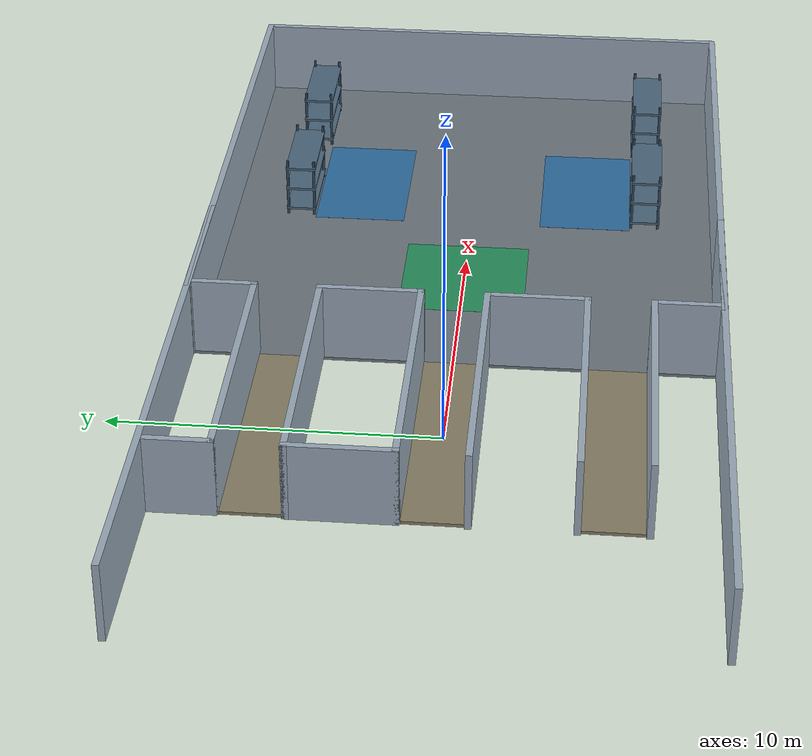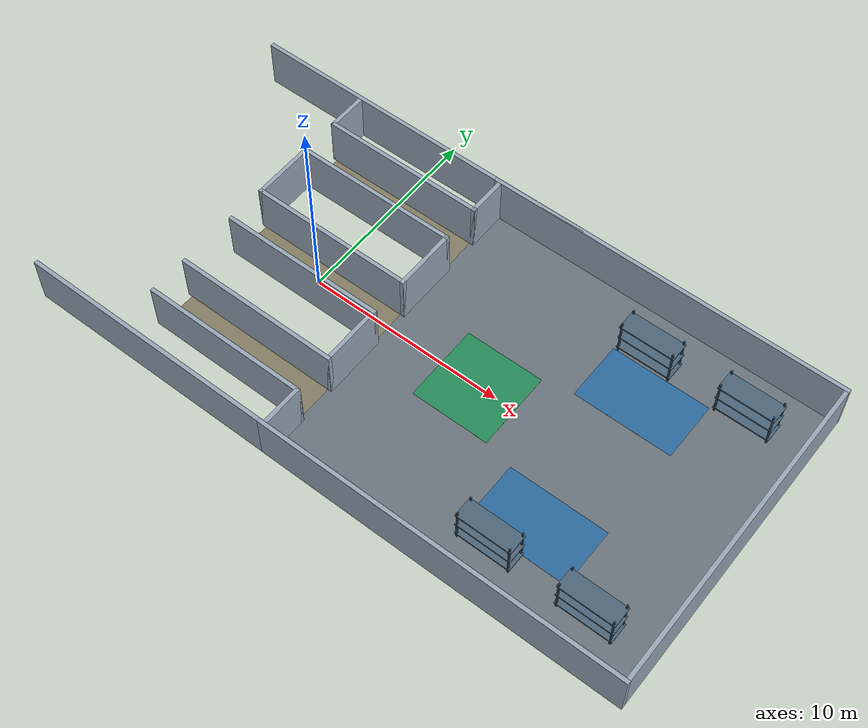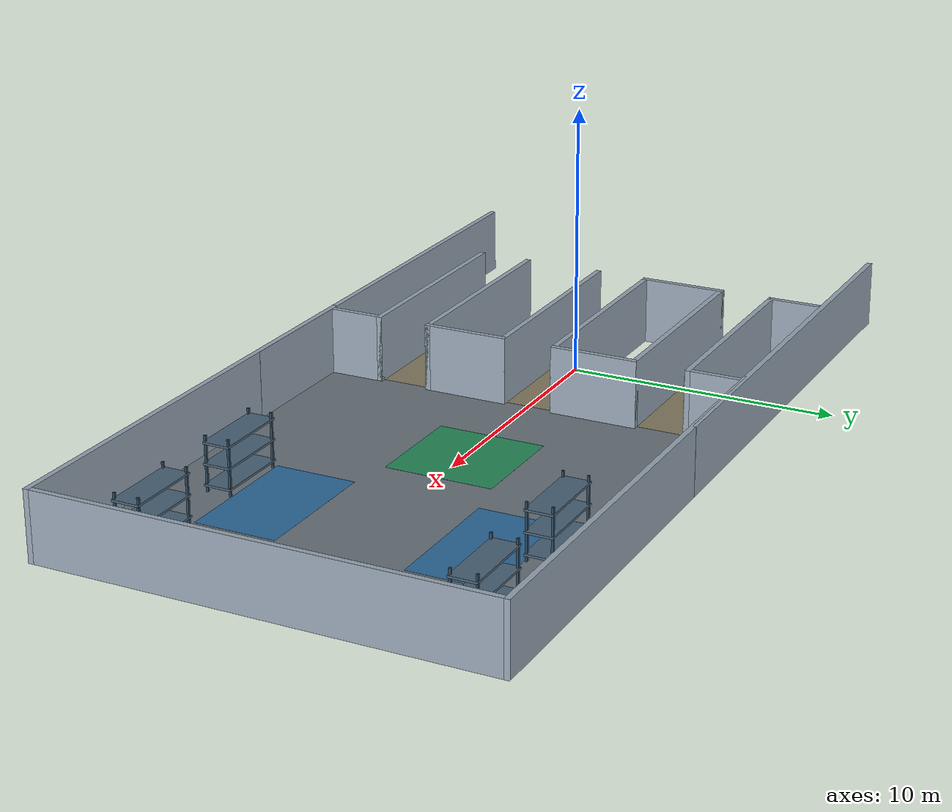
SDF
<sdf version="1.8">
 <world name="ax_test">
  <model name="floor_destination">
   <static>true</static>
   <pose>13 0 -0.050000000000000003 0 0 0</pose>
   <link name="body">
    <collision name="collision"><geometry><box><size>18 16 0.10000000000000001</size></box></geometry></collision>
    <visual name="visual">
     <geometry><box><size>18 16 0.10000000000000001</size></box></geometry>
     <material>
      <ambient>0.419999987 0.460000008 0.49000001 1</ambient>
      <diffuse>0.419999987 0.460000008 0.49000001 1</diffuse>
     </material>
     <cast_shadows>false</cast_shadows>
    </visual>
    <inertial>
     <mass>1</mass>
     <inertia><ixx>1</ixx><ixy>0</ixy><ixz>0</ixz><iyy>1</iyy><iyz>0</iyz><izz>1</izz></inertia>
    </inertial>
   </link>
  </model>
  <model name="wall_destination_north">
   <static>true</static>
   <pose>13 8.0999999999999996 1.25 0 0 0</pose>
   <link name="body">
    <collision name="collision">
     <geometry><box><size>18.399999999999999 0.20000000000000001 2.5</size></box></geometry>
    </collision>
    <visual name="visual">
     <geometry><box><size>18.399999999999999 0.20000000000000001 2.5</size></box></geometry>
     <material>
      <ambient>0.600000024 0.660000026 0.720000029 1</ambient>
      <diffuse>0.600000024 0.660000026 0.720000029 1</diffuse>
     </material>
     <cast_shadows>false</cast_shadows>
    </visual>
    <inertial>
     <mass>1</mass>
     <inertia><ixx>1</ixx><ixy>0</ixy><ixz>0</ixz><iyy>1</iyy><iyz>0</iyz><izz>1</izz></inertia>
    </inertial>
   </link>
  </model>
  <model name="wall_destination_south">
   <static>true</static>
   <pose>13 -8.0999999999999996 1.25 0 0 0</pose>
   <link name="body">
    <collision name="collision">
     <geometry><box><size>18.399999999999999 0.20000000000000001 2.5</size></box></geometry>
    </collision>
    <visual name="visual">
     <geometry><box><size>18.399999999999999 0.20000000000000001 2.5</size></box></geometry>
     <material>
      <ambient>0.600000024 0.660000026 0.720000029 1</ambient>
      <diffuse>0.600000024 0.660000026 0.720000029 1</diffuse>
     </material>
     <cast_shadows>false</cast_shadows>
    </visual>
    <inertial>
     <mass>1</mass>
     <inertia><ixx>1</ixx><ixy>0</ixy><ixz>0</ixz><iyy>1</iyy><iyz>0</iyz><izz>1</izz></inertia>
    </inertial>
   </link>
  </model>
  <model name="wall_destination_outer">
   <static>true</static>
   <pose>22.100000000000001 0 1.25 0 0 0</pose>
   <link name="body">
    <collision name="collision">
     <geometry><box><size>0.20000000000000001 16 2.5</size></box></geometry>
    </collision>
    <visual name="visual">
     <geometry><box><size>0.20000000000000001 16 2.5</size></box></geometry>
     <material>
      <ambient>0.600000024 0.660000026 0.720000029 1</ambient>
      <diffuse>0.600000024 0.660000026 0.720000029 1</diffuse>
     </material>
     <cast_shadows>false</cast_shadows>
    </visual>
    <inertial>
     <mass>1</mass>
     <inertia><ixx>1</ixx><ixy>0</ixy><ixz>0</ixz><iyy>1</iyy><iyz>0</iyz><izz>1</izz></inertia>
    </inertial>
   </link>
  </model>
  <model name="floor_transfer_corridor">
   <static>true</static>
   <pose>0 0 -0.050000000000000003 0 0 0</pose>
   <link name="body">
    <collision name="collision"><geometry><box><size>8 1.8 0.10000000000000001</size></box></geometry></collision>
    <visual name="visual">
     <geometry><box><size>8 1.8 0.10000000000000001</size></box></geometry>
     <material>
      <ambient>0.519999981 0.49000001 0.389999986 1</ambient>
      <diffuse>0.519999981 0.49000001 0.389999986 1</diffuse>
     </material>
     <cast_shadows>false</cast_shadows>
    </visual>
    <inertial>
     <mass>1</mass>
     <inertia><ixx>1</ixx><ixy>0</ixy><ixz>0</ixz><iyy>1</iyy><iyz>0</iyz><izz>1</izz></inertia>
    </inertial>
   </link>
  </model>
  <model name="destination_unload_zone">
   <static>true</static>
   <pose>9 0 0.001 0 0 0</pose>
   <link name="body">
    <visual name="visual">
     <geometry><box><size>4 4 0.002</size></box></geometry>
     <material>
      <ambient>0.150000006 0.550000012 0.349999994 1</ambient>
      <diffuse>0.150000006 0.550000012 0.349999994 1</diffuse>
     </material>
     <cast_shadows>false</cast_shadows>
    </visual>
    <inertial>
     <mass>1</mass>
     <inertia><ixx>1</ixx><ixy>0</ixy><ixz>0</ixz><iyy>1</iyy><iyz>0</iyz><izz>1</izz></inertia>
    </inertial>
   </link>
  </model>
  <model name="destination_stack_zone_a">
   <static>true</static>
   <pose>15 3.7999999999999998 0.001 0 0 0</pose>
   <link name="body">
    <visual name="visual">
     <geometry><box><size>5 3 0.002</size></box></geometry>
     <material>
      <ambient>0.180000007 0.419999987 0.620000005 1</ambient>
      <diffuse>0.180000007 0.419999987 0.620000005 1</diffuse>
     </material>
     <cast_shadows>false</cast_shadows>
    </visual>
    <inertial>
     <mass>1</mass>
     <inertia><ixx>1</ixx><ixy>0</ixy><ixz>0</ixz><iyy>1</iyy><iyz>0</iyz><izz>1</izz></inertia>
    </inertial>
   </link>
  </model>
  <model name="destination_stack_zone_b">
   <static>true</static>
   <pose>15 -3.7999999999999998 0.001 0 0 0</pose>
   <link name="body">
    <visual name="visual">
     <geometry><box><size>5 3 0.002</size></box></geometry>
     <material>
      <ambient>0.180000007 0.419999987 0.620000005 1</ambient>
      <diffuse>0.180000007 0.419999987 0.620000005 1</diffuse>
     </material>
     <cast_shadows>false</cast_shadows>
    </visual>
    <inertial>
     <mass>1</mass>
     <inertia><ixx>1</ixx><ixy>0</ixy><ixz>0</ixz><iyy>1</iyy><iyz>0</iyz><izz>1</izz></inertia>
    </inertial>
   </link>
  </model>
  <model name="destination_rack_1_leg_-1.3_-0.44">
   <static>true</static>
   <pose>12.699999999999999 5.3599999999999994 1 0 0 0</pose>
   <link name="body">
    <collision name="collision">
     <geometry><box><size>0.080000000000000002 0.080000000000000002 2</size></box></geometry>
    </collision>
    <visual name="visual">
     <geometry><box><size>0.080000000000000002 0.080000000000000002 2</size></box></geometry>
     <material>
      <ambient>0.180000007 0.280000001 0.360000014 1</ambient>
      <diffuse>0.180000007 0.280000001 0.360000014 1</diffuse>
     </material>
     <cast_shadows>false</cast_shadows>
    </visual>
    <inertial>
     <mass>1</mass>
     <inertia><ixx>1</ixx><ixy>0</ixy><ixz>0</ixz><iyy>1</iyy><iyz>0</iyz><izz>1</izz></inertia>
    </inertial>
   </link>
  </model>
  <model name="destination_rack_1_leg_-1.3_0.44">
   <static>true</static>
   <pose>12.699999999999999 6.2400000000000002 1 0 0 0</pose>
   <link name="body">
    <collision name="collision">
     <geometry><box><size>0.080000000000000002 0.080000000000000002 2</size></box></geometry>
    </collision>
    <visual name="visual">
     <geometry><box><size>0.080000000000000002 0.080000000000000002 2</size></box></geometry>
     <material>
      <ambient>0.180000007 0.280000001 0.360000014 1</ambient>
      <diffuse>0.180000007 0.280000001 0.360000014 1</diffuse>
     </material>
     <cast_shadows>false</cast_shadows>
    </visual>
    <inertial>
     <mass>1</mass>
     <inertia><ixx>1</ixx><ixy>0</ixy><ixz>0</ixz><iyy>1</iyy><iyz>0</iyz><izz>1</izz></inertia>
    </inertial>
   </link>
  </model>
  <model name="destination_rack_1_leg_1.3_-0.44">
   <static>true</static>
   <pose>15.300000000000001 5.3599999999999994 1 0 0 0</pose>
   <link name="body">
    <collision name="collision">
     <geometry><box><size>0.080000000000000002 0.080000000000000002 2</size></box></geometry>
    </collision>
    <visual name="visual">
     <geometry><box><size>0.080000000000000002 0.080000000000000002 2</size></box></geometry>
     <material>
      <ambient>0.180000007 0.280000001 0.360000014 1</ambient>
      <diffuse>0.180000007 0.280000001 0.360000014 1</diffuse>
     </material>
     <cast_shadows>false</cast_shadows>
    </visual>
    <inertial>
     <mass>1</mass>
     <inertia><ixx>1</ixx><ixy>0</ixy><ixz>0</ixz><iyy>1</iyy><iyz>0</iyz><izz>1</izz></inertia>
    </inertial>
   </link>
  </model>
  <model name="destination_rack_1_leg_1.3_0.44">
   <static>true</static>
   <pose>15.300000000000001 6.2400000000000002 1 0 0 0</pose>
   <link name="body">
    <collision name="collision">
     <geometry><box><size>0.080000000000000002 0.080000000000000002 2</size></box></geometry>
    </collision>
    <visual name="visual">
     <geometry><box><size>0.080000000000000002 0.080000000000000002 2</size></box></geometry>
     <material>
      <ambient>0.180000007 0.280000001 0.360000014 1</ambient>
      <diffuse>0.180000007 0.280000001 0.360000014 1</diffuse>
     </material>
     <cast_shadows>false</cast_shadows>
    </visual>
    <inertial>
     <mass>1</mass>
     <inertia><ixx>1</ixx><ixy>0</ixy><ixz>0</ixz><iyy>1</iyy><iyz>0</iyz><izz>1</izz></inertia>
    </inertial>
   </link>
  </model>
  <model name="destination_rack_1_shelf_0.25">
   <static>true</static>
   <pose>14 5.7999999999999998 0.25 0 0 0</pose>
   <link name="body">
    <collision name="collision">
     <geometry><box><size>2.7999999999999998 1 0.080000000000000002</size></box></geometry>
    </collision>
    <visual name="visual">
     <geometry><box><size>2.7999999999999998 1 0.080000000000000002</size></box></geometry>
     <material>
      <ambient>0.300000012 0.400000006 0.479999989 1</ambient>
      <diffuse>0.300000012 0.400000006 0.479999989 1</diffuse>
     </material>
     <cast_shadows>false</cast_shadows>
    </visual>
    <inertial>
     <mass>1</mass>
     <inertia><ixx>1</ixx><ixy>0</ixy><ixz>0</ixz><iyy>1</iyy><iyz>0</iyz><izz>1</izz></inertia>
    </inertial>
   </link>
  </model>
  <model name="destination_rack_1_shelf_1.0">
   <static>true</static>
   <pose>14 5.7999999999999998 1 0 0 0</pose>
   <link name="body">
    <collision name="collision">
     <geometry><box><size>2.7999999999999998 1 0.080000000000000002</size></box></geometry>
    </collision>
    <visual name="visual">
     <geometry><box><size>2.7999999999999998 1 0.080000000000000002</size></box></geometry>
     <material>
      <ambient>0.300000012 0.400000006 0.479999989 1</ambient>
      <diffuse>0.300000012 0.400000006 0.479999989 1</diffuse>
     </material>
     <cast_shadows>false</cast_shadows>
    </visual>
    <inertial>
     <mass>1</mass>
     <inertia><ixx>1</ixx><ixy>0</ixy><ixz>0</ixz><iyy>1</iyy><iyz>0</iyz><izz>1</izz></inertia>
    </inertial>
   </link>
  </model>
  <model name="destination_rack_1_shelf_1.75">
   <static>true</static>
   <pose>14 5.7999999999999998 1.75 0 0 0</pose>
   <link name="body">
    <collision name="collision">
     <geometry><box><size>2.7999999999999998 1 0.080000000000000002</size></box></geometry>
    </collision>
    <visual name="visual">
     <geometry><box><size>2.7999999999999998 1 0.080000000000000002</size></box></geometry>
     <material>
      <ambient>0.300000012 0.400000006 0.479999989 1</ambient>
      <diffuse>0.300000012 0.400000006 0.479999989 1</diffuse>
     </material>
     <cast_shadows>false</cast_shadows>
    </visual>
    <inertial>
     <mass>1</mass>
     <inertia><ixx>1</ixx><ixy>0</ixy><ixz>0</ixz><iyy>1</iyy><iyz>0</iyz><izz>1</izz></inertia>
    </inertial>
   </link>
  </model>
  <model name="destination_rack_2_leg_-1.3_-0.44">
   <static>true</static>
   <pose>17.699999999999999 5.3599999999999994 1 0 0 0</pose>
   <link name="body">
    <collision name="collision">
     <geometry><box><size>0.080000000000000002 0.080000000000000002 2</size></box></geometry>
    </collision>
    <visual name="visual">
     <geometry><box><size>0.080000000000000002 0.080000000000000002 2</size></box></geometry>
     <material>
      <ambient>0.180000007 0.280000001 0.360000014 1</ambient>
      <diffuse>0.180000007 0.280000001 0.360000014 1</diffuse>
     </material>
     <cast_shadows>false</cast_shadows>
    </visual>
    <inertial>
     <mass>1</mass>
     <inertia><ixx>1</ixx><ixy>0</ixy><ixz>0</ixz><iyy>1</iyy><iyz>0</iyz><izz>1</izz></inertia>
    </inertial>
   </link>
  </model>
  <model name="destination_rack_2_leg_-1.3_0.44">
   <static>true</static>
   <pose>17.699999999999999 6.2400000000000002 1 0 0 0</pose>
   <link name="body">
    <collision name="collision">
     <geometry><box><size>0.080000000000000002 0.080000000000000002 2</size></box></geometry>
    </collision>
    <visual name="visual">
     <geometry><box><size>0.080000000000000002 0.080000000000000002 2</size></box></geometry>
     <material>
      <ambient>0.180000007 0.280000001 0.360000014 1</ambient>
      <diffuse>0.180000007 0.280000001 0.360000014 1</diffuse>
     </material>
     <cast_shadows>false</cast_shadows>
    </visual>
    <inertial>
     <mass>1</mass>
     <inertia><ixx>1</ixx><ixy>0</ixy><ixz>0</ixz><iyy>1</iyy><iyz>0</iyz><izz>1</izz></inertia>
    </inertial>
   </link>
  </model>
  <model name="destination_rack_2_leg_1.3_-0.44">
   <static>true</static>
   <pose>20.300000000000001 5.3599999999999994 1 0 0 0</pose>
   <link name="body">
    <collision name="collision">
     <geometry><box><size>0.080000000000000002 0.080000000000000002 2</size></box></geometry>
    </collision>
    <visual name="visual">
     <geometry><box><size>0.080000000000000002 0.080000000000000002 2</size></box></geometry>
     <material>
      <ambient>0.180000007 0.280000001 0.360000014 1</ambient>
      <diffuse>0.180000007 0.280000001 0.360000014 1</diffuse>
     </material>
     <cast_shadows>false</cast_shadows>
    </visual>
    <inertial>
     <mass>1</mass>
     <inertia><ixx>1</ixx><ixy>0</ixy><ixz>0</ixz><iyy>1</iyy><iyz>0</iyz><izz>1</izz></inertia>
    </inertial>
   </link>
  </model>
  <model name="destination_rack_2_leg_1.3_0.44">
   <static>true</static>
   <pose>20.300000000000001 6.2400000000000002 1 0 0 0</pose>
   <link name="body">
    <collision name="collision">
     <geometry><box><size>0.080000000000000002 0.080000000000000002 2</size></box></geometry>
    </collision>
    <visual name="visual">
     <geometry><box><size>0.080000000000000002 0.080000000000000002 2</size></box></geometry>
     <material>
      <ambient>0.180000007 0.280000001 0.360000014 1</ambient>
      <diffuse>0.180000007 0.280000001 0.360000014 1</diffuse>
     </material>
     <cast_shadows>false</cast_shadows>
    </visual>
    <inertial>
     <mass>1</mass>
     <inertia><ixx>1</ixx><ixy>0</ixy><ixz>0</ixz><iyy>1</iyy><iyz>0</iyz><izz>1</izz></inertia>
    </inertial>
   </link>
  </model>
  <model name="destination_rack_2_shelf_0.25">
   <static>true</static>
   <pose>19 5.7999999999999998 0.25 0 0 0</pose>
   <link name="body">
    <collision name="collision">
     <geometry><box><size>2.7999999999999998 1 0.080000000000000002</size></box></geometry>
    </collision>
    <visual name="visual">
     <geometry><box><size>2.7999999999999998 1 0.080000000000000002</size></box></geometry>
     <material>
      <ambient>0.300000012 0.400000006 0.479999989 1</ambient>
      <diffuse>0.300000012 0.400000006 0.479999989 1</diffuse>
     </material>
     <cast_shadows>false</cast_shadows>
    </visual>
    <inertial>
     <mass>1</mass>
     <inertia><ixx>1</ixx><ixy>0</ixy><ixz>0</ixz><iyy>1</iyy><iyz>0</iyz><izz>1</izz></inertia>
    </inertial>
   </link>
  </model>
  <model name="destination_rack_2_shelf_1.0">
   <static>true</static>
   <pose>19 5.7999999999999998 1 0 0 0</pose>
   <link name="body">
    <collision name="collision">
     <geometry><box><size>2.7999999999999998 1 0.080000000000000002</size></box></geometry>
    </collision>
    <visual name="visual">
     <geometry><box><size>2.7999999999999998 1 0.080000000000000002</size></box></geometry>
     <material>
      <ambient>0.300000012 0.400000006 0.479999989 1</ambient>
      <diffuse>0.300000012 0.400000006 0.479999989 1</diffuse>
     </material>
     <cast_shadows>false</cast_shadows>
    </visual>
    <inertial>
     <mass>1</mass>
     <inertia><ixx>1</ixx><ixy>0</ixy><ixz>0</ixz><iyy>1</iyy><iyz>0</iyz><izz>1</izz></inertia>
    </inertial>
   </link>
  </model>
  <model name="destination_rack_2_shelf_1.75">
   <static>true</static>
   <pose>19 5.7999999999999998 1.75 0 0 0</pose>
   <link name="body">
    <collision name="collision">
     <geometry><box><size>2.7999999999999998 1 0.080000000000000002</size></box></geometry>
    </collision>
    <visual name="visual">
     <geometry><box><size>2.7999999999999998 1 0.080000000000000002</size></box></geometry>
     <material>
      <ambient>0.300000012 0.400000006 0.479999989 1</ambient>
      <diffuse>0.300000012 0.400000006 0.479999989 1</diffuse>
     </material>
     <cast_shadows>false</cast_shadows>
    </visual>
    <inertial>
     <mass>1</mass>
     <inertia><ixx>1</ixx><ixy>0</ixy><ixz>0</ixz><iyy>1</iyy><iyz>0</iyz><izz>1</izz></inertia>
    </inertial>
   </link>
  </model>
  <model name="destination_rack_3_leg_-1.3_-0.44">
   <static>true</static>
   <pose>12.699999999999999 -6.2400000000000002 1 0 0 0</pose>
   <link name="body">
    <collision name="collision">
     <geometry><box><size>0.080000000000000002 0.080000000000000002 2</size></box></geometry>
    </collision>
    <visual name="visual">
     <geometry><box><size>0.080000000000000002 0.080000000000000002 2</size></box></geometry>
     <material>
      <ambient>0.180000007 0.280000001 0.360000014 1</ambient>
      <diffuse>0.180000007 0.280000001 0.360000014 1</diffuse>
     </material>
     <cast_shadows>false</cast_shadows>
    </visual>
    <inertial>
     <mass>1</mass>
     <inertia><ixx>1</ixx><ixy>0</ixy><ixz>0</ixz><iyy>1</iyy><iyz>0</iyz><izz>1</izz></inertia>
    </inertial>
   </link>
  </model>
  <model name="destination_rack_3_leg_-1.3_0.44">
   <static>true</static>
   <pose>12.699999999999999 -5.3599999999999994 1 0 0 0</pose>
   <link name="body">
    <collision name="collision">
     <geometry><box><size>0.080000000000000002 0.080000000000000002 2</size></box></geometry>
    </collision>
    <visual name="visual">
     <geometry><box><size>0.080000000000000002 0.080000000000000002 2</size></box></geometry>
     <material>
      <ambient>0.180000007 0.280000001 0.360000014 1</ambient>
      <diffuse>0.180000007 0.280000001 0.360000014 1</diffuse>
     </material>
     <cast_shadows>false</cast_shadows>
    </visual>
    <inertial>
     <mass>1</mass>
     <inertia><ixx>1</ixx><ixy>0</ixy><ixz>0</ixz><iyy>1</iyy><iyz>0</iyz><izz>1</izz></inertia>
    </inertial>
   </link>
  </model>
  <model name="destination_rack_3_leg_1.3_-0.44">
   <static>true</static>
   <pose>15.300000000000001 -6.2400000000000002 1 0 0 0</pose>
   <link name="body">
    <collision name="collision">
     <geometry><box><size>0.080000000000000002 0.080000000000000002 2</size></box></geometry>
    </collision>
    <visual name="visual">
     <geometry><box><size>0.080000000000000002 0.080000000000000002 2</size></box></geometry>
     <material>
      <ambient>0.180000007 0.280000001 0.360000014 1</ambient>
      <diffuse>0.180000007 0.280000001 0.360000014 1</diffuse>
     </material>
     <cast_shadows>false</cast_shadows>
    </visual>
    <inertial>
     <mass>1</mass>
     <inertia><ixx>1</ixx><ixy>0</ixy><ixz>0</ixz><iyy>1</iyy><iyz>0</iyz><izz>1</izz></inertia>
    </inertial>
   </link>
  </model>
  <model name="destination_rack_3_leg_1.3_0.44">
   <static>true</static>
   <pose>15.300000000000001 -5.3599999999999994 1 0 0 0</pose>
   <link name="body">
    <collision name="collision">
     <geometry><box><size>0.080000000000000002 0.080000000000000002 2</size></box></geometry>
    </collision>
    <visual name="visual">
     <geometry><box><size>0.080000000000000002 0.080000000000000002 2</size></box></geometry>
     <material>
      <ambient>0.180000007 0.280000001 0.360000014 1</ambient>
      <diffuse>0.180000007 0.280000001 0.360000014 1</diffuse>
     </material>
     <cast_shadows>false</cast_shadows>
    </visual>
    <inertial>
     <mass>1</mass>
     <inertia><ixx>1</ixx><ixy>0</ixy><ixz>0</ixz><iyy>1</iyy><iyz>0</iyz><izz>1</izz></inertia>
    </inertial>
   </link>
  </model>
  <model name="destination_rack_3_shelf_0.25">
   <static>true</static>
   <pose>14 -5.7999999999999998 0.25 0 0 0</pose>
   <link name="body">
    <collision name="collision">
     <geometry><box><size>2.7999999999999998 1 0.080000000000000002</size></box></geometry>
    </collision>
    <visual name="visual">
     <geometry><box><size>2.7999999999999998 1 0.080000000000000002</size></box></geometry>
     <material>
      <ambient>0.300000012 0.400000006 0.479999989 1</ambient>
      <diffuse>0.300000012 0.400000006 0.479999989 1</diffuse>
     </material>
     <cast_shadows>false</cast_shadows>
    </visual>
    <inertial>
     <mass>1</mass>
     <inertia><ixx>1</ixx><ixy>0</ixy><ixz>0</ixz><iyy>1</iyy><iyz>0</iyz><izz>1</izz></inertia>
    </inertial>
   </link>
  </model>
  <model name="destination_rack_3_shelf_1.0">
   <static>true</static>
   <pose>14 -5.7999999999999998 1 0 0 0</pose>
   <link name="body">
    <collision name="collision">
     <geometry><box><size>2.7999999999999998 1 0.080000000000000002</size></box></geometry>
    </collision>
    <visual name="visual">
     <geometry><box><size>2.7999999999999998 1 0.080000000000000002</size></box></geometry>
     <material>
      <ambient>0.300000012 0.400000006 0.479999989 1</ambient>
      <diffuse>0.300000012 0.400000006 0.479999989 1</diffuse>
     </material>
     <cast_shadows>false</cast_shadows>
    </visual>
    <inertial>
     <mass>1</mass>
     <inertia><ixx>1</ixx><ixy>0</ixy><ixz>0</ixz><iyy>1</iyy><iyz>0</iyz><izz>1</izz></inertia>
    </inertial>
   </link>
  </model>
  <model name="destination_rack_3_shelf_1.75">
   <static>true</static>
   <pose>14 -5.7999999999999998 1.75 0 0 0</pose>
   <link name="body">
    <collision name="collision">
     <geometry><box><size>2.7999999999999998 1 0.080000000000000002</size></box></geometry>
    </collision>
    <visual name="visual">
     <geometry><box><size>2.7999999999999998 1 0.080000000000000002</size></box></geometry>
     <material>
      <ambient>0.300000012 0.400000006 0.479999989 1</ambient>
      <diffuse>0.300000012 0.400000006 0.479999989 1</diffuse>
     </material>
     <cast_shadows>false</cast_shadows>
    </visual>
    <inertial>
     <mass>1</mass>
     <inertia><ixx>1</ixx><ixy>0</ixy><ixz>0</ixz><iyy>1</iyy><iyz>0</iyz><izz>1</izz></inertia>
    </inertial>
   </link>
  </model>
  <model name="destination_rack_4_leg_-1.3_-0.44">
   <static>true</static>
   <pose>17.699999999999999 -6.2400000000000002 1 0 0 0</pose>
   <link name="body">
    <collision name="collision">
     <geometry><box><size>0.080000000000000002 0.080000000000000002 2</size></box></geometry>
    </collision>
    <visual name="visual">
     <geometry><box><size>0.080000000000000002 0.080000000000000002 2</size></box></geometry>
     <material>
      <ambient>0.180000007 0.280000001 0.360000014 1</ambient>
      <diffuse>0.180000007 0.280000001 0.360000014 1</diffuse>
     </material>
     <cast_shadows>false</cast_shadows>
    </visual>
    <inertial>
     <mass>1</mass>
     <inertia><ixx>1</ixx><ixy>0</ixy><ixz>0</ixz><iyy>1</iyy><iyz>0</iyz><izz>1</izz></inertia>
    </inertial>
   </link>
  </model>
  <model name="destination_rack_4_leg_-1.3_0.44">
   <static>true</static>
   <pose>17.699999999999999 -5.3599999999999994 1 0 0 0</pose>
   <link name="body">
    <collision name="collision">
     <geometry><box><size>0.080000000000000002 0.080000000000000002 2</size></box></geometry>
    </collision>
    <visual name="visual">
     <geometry><box><size>0.080000000000000002 0.080000000000000002 2</size></box></geometry>
     <material>
      <ambient>0.180000007 0.280000001 0.360000014 1</ambient>
      <diffuse>0.180000007 0.280000001 0.360000014 1</diffuse>
     </material>
     <cast_shadows>false</cast_shadows>
    </visual>
    <inertial>
     <mass>1</mass>
     <inertia><ixx>1</ixx><ixy>0</ixy><ixz>0</ixz><iyy>1</iyy><iyz>0</iyz><izz>1</izz></inertia>
    </inertial>
   </link>
  </model>
  <model name="destination_rack_4_leg_1.3_-0.44">
   <static>true</static>
   <pose>20.300000000000001 -6.2400000000000002 1 0 0 0</pose>
   <link name="body">
    <collision name="collision">
     <geometry><box><size>0.080000000000000002 0.080000000000000002 2</size></box></geometry>
    </collision>
    <visual name="visual">
     <geometry><box><size>0.080000000000000002 0.080000000000000002 2</size></box></geometry>
     <material>
      <ambient>0.180000007 0.280000001 0.360000014 1</ambient>
      <diffuse>0.180000007 0.280000001 0.360000014 1</diffuse>
     </material>
     <cast_shadows>false</cast_shadows>
    </visual>
    <inertial>
     <mass>1</mass>
     <inertia><ixx>1</ixx><ixy>0</ixy><ixz>0</ixz><iyy>1</iyy><iyz>0</iyz><izz>1</izz></inertia>
    </inertial>
   </link>
  </model>
  <model name="destination_rack_4_leg_1.3_0.44">
   <static>true</static>
   <pose>20.300000000000001 -5.3599999999999994 1 0 0 0</pose>
   <link name="body">
    <collision name="collision">
     <geometry><box><size>0.080000000000000002 0.080000000000000002 2</size></box></geometry>
    </collision>
    <visual name="visual">
     <geometry><box><size>0.080000000000000002 0.080000000000000002 2</size></box></geometry>
     <material>
      <ambient>0.180000007 0.280000001 0.360000014 1</ambient>
      <diffuse>0.180000007 0.280000001 0.360000014 1</diffuse>
     </material>
     <cast_shadows>false</cast_shadows>
    </visual>
    <inertial>
     <mass>1</mass>
     <inertia><ixx>1</ixx><ixy>0</ixy><ixz>0</ixz><iyy>1</iyy><iyz>0</iyz><izz>1</izz></inertia>
    </inertial>
   </link>
  </model>
  <model name="destination_rack_4_shelf_0.25">
   <static>true</static>
   <pose>19 -5.7999999999999998 0.25 0 0 0</pose>
   <link name="body">
    <collision name="collision">
     <geometry><box><size>2.7999999999999998 1 0.080000000000000002</size></box></geometry>
    </collision>
    <visual name="visual">
     <geometry><box><size>2.7999999999999998 1 0.080000000000000002</size></box></geometry>
     <material>
      <ambient>0.300000012 0.400000006 0.479999989 1</ambient>
      <diffuse>0.300000012 0.400000006 0.479999989 1</diffuse>
     </material>
     <cast_shadows>false</cast_shadows>
    </visual>
    <inertial>
     <mass>1</mass>
     <inertia><ixx>1</ixx><ixy>0</ixy><ixz>0</ixz><iyy>1</iyy><iyz>0</iyz><izz>1</izz></inertia>
    </inertial>
   </link>
  </model>
  <model name="destination_rack_4_shelf_1.0">
   <static>true</static>
   <pose>19 -5.7999999999999998 1 0 0 0</pose>
   <link name="body">
    <collision name="collision">
     <geometry><box><size>2.7999999999999998 1 0.080000000000000002</size></box></geometry>
    </collision>
    <visual name="visual">
     <geometry><box><size>2.7999999999999998 1 0.080000000000000002</size></box></geometry>
     <material>
      <ambient>0.300000012 0.400000006 0.479999989 1</ambient>
      <diffuse>0.300000012 0.400000006 0.479999989 1</diffuse>
     </material>
     <cast_shadows>false</cast_shadows>
    </visual>
    <inertial>
     <mass>1</mass>
     <inertia><ixx>1</ixx><ixy>0</ixy><ixz>0</ixz><iyy>1</iyy><iyz>0</iyz><izz>1</izz></inertia>
    </inertial>
   </link>
  </model>
  <model name="destination_rack_4_shelf_1.75">
   <static>true</static>
   <pose>19 -5.7999999999999998 1.75 0 0 0</pose>
   <link name="body">
    <collision name="collision">
     <geometry><box><size>2.7999999999999998 1 0.080000000000000002</size></box></geometry>
    </collision>
    <visual name="visual">
     <geometry><box><size>2.7999999999999998 1 0.080000000000000002</size></box></geometry>
     <material>
      <ambient>0.300000012 0.400000006 0.479999989 1</ambient>
      <diffuse>0.300000012 0.400000006 0.479999989 1</diffuse>
     </material>
     <cast_shadows>false</cast_shadows>
    </visual>
    <inertial>
     <mass>1</mass>
     <inertia><ixx>1</ixx><ixy>0</ixy><ixz>0</ixz><iyy>1</iyy><iyz>0</iyz><izz>1</izz></inertia>
    </inertial>
   </link>
  </model>
  <model name="floor_transfer_corridor_1">
   <static>true</static>
   <pose>0 -5.0213437128181804 -0.050000000000000003 0 0 0</pose>
   <link name="body">
    <collision name="collision"><geometry><box><size>8 1.8 0.10000000000000001</size></box></geometry></collision>
    <visual name="visual">
     <geometry><box><size>8 1.8 0.10000000000000001</size></box></geometry>
     <material>
      <ambient>0.519999981 0.49000001 0.389999986 1</ambient>
      <diffuse>0.519999981 0.49000001 0.389999986 1</diffuse>
     </material>
     <cast_shadows>false</cast_shadows>
    </visual>
    <inertial>
     <mass>1</mass>
     <inertia><ixx>1</ixx><ixy>0</ixy><ixz>0</ixz><iyy>1</iyy><iyz>0</iyz><izz>1</izz></inertia>
    </inertial>
   </link>
  </model>
  <model name="floor_transfer_corridor_2">
   <static>true</static>
   <pose>0 5.0820715288500296 -0.050000000000000003 0 0 0</pose>
   <link name="body">
    <collision name="collision"><geometry><box><size>8 1.8 0.10000000000000001</size></box></geometry></collision>
    <visual name="visual">
     <geometry><box><size>8 1.8 0.10000000000000001</size></box></geometry>
     <material>
      <ambient>0.519999981 0.49000001 0.389999986 1</ambient>
      <diffuse>0.519999981 0.49000001 0.389999986 1</diffuse>
     </material>
     <cast_shadows>false</cast_shadows>
    </visual>
    <inertial>
     <mass>1</mass>
     <inertia><ixx>1</ixx><ixy>0</ixy><ixz>0</ixz><iyy>1</iyy><iyz>0</iyz><izz>1</izz></inertia>
    </inertial>
   </link>
  </model>
  <model name="wall_destination_north_1">
   <static>true</static>
   <pose>-0.52225806888384252 8.1082940458518138 1.25 0 0 0</pose>
   <link name="body">
    <collision name="collision">
     <geometry><box><size>18.399999999999999 0.20000000000000001 2.5</size></box></geometry>
    </collision>
    <visual name="visual">
     <geometry><box><size>18.399999999999999 0.20000000000000001 2.5</size></box></geometry>
     <material>
      <ambient>0.600000024 0.660000026 0.720000029 1</ambient>
      <diffuse>0.600000024 0.660000026 0.720000029 1</diffuse>
     </material>
     <cast_shadows>false</cast_shadows>
    </visual>
    <inertial>
     <mass>1</mass>
     <inertia><ixx>1</ixx><ixy>0</ixy><ixz>0</ixz><iyy>1</iyy><iyz>0</iyz><izz>1</izz></inertia>
    </inertial>
   </link>
  </model>
  <model name="wall_destination_north_2">
   <static>true</static>
   <pose>-0.024955935458532252 -8.0949732082657739 1.25 0 0 0</pose>
   <link name="body">
    <collision name="collision">
     <geometry><box><size>18.399999999999999 0.20000000000000001 2.5</size></box></geometry>
    </collision>
    <visual name="visual">
     <geometry><box><size>18.399999999999999 0.20000000000000001 2.5</size></box></geometry>
     <material>
      <ambient>0.600000024 0.660000026 0.720000029 1</ambient>
      <diffuse>0.600000024 0.660000026 0.720000029 1</diffuse>
     </material>
     <cast_shadows>false</cast_shadows>
    </visual>
    <inertial>
     <mass>1</mass>
     <inertia><ixx>1</ixx><ixy>0</ixy><ixz>0</ixz><iyy>1</iyy><iyz>0</iyz><izz>1</izz></inertia>
    </inertial>
   </link>
  </model>
  <model name="corridor_1_wall_north">
   <static>true</static>
   <pose>0 -4.0213437128181804 1.25 0 0 0</pose>
   <link name="body">
    <collision name="collision">
     <geometry><box><size>8.4000000000000004 0.20000000000000001 2.5</size></box></geometry>
    </collision>
    <visual name="visual">
     <geometry><box><size>8.4000000000000004 0.20000000000000001 2.5</size></box></geometry>
     <material>
      <ambient>0.600000024 0.660000026 0.720000029 1</ambient>
      <diffuse>0.600000024 0.660000026 0.720000029 1</diffuse>
     </material>
     <cast_shadows>false</cast_shadows>
    </visual>
    <inertial>
     <mass>1</mass>
     <inertia><ixx>1</ixx><ixy>0</ixy><ixz>0</ixz><iyy>1</iyy><iyz>0</iyz><izz>1</izz></inertia>
    </inertial>
   </link>
  </model>
  <model name="corridor_1_wall_south">
   <static>true</static>
   <pose>0 -6.0213437128181804 1.25 0 0 0</pose>
   <link name="body">
    <collision name="collision">
     <geometry><box><size>8.4000000000000004 0.20000000000000001 2.5</size></box></geometry>
    </collision>
    <visual name="visual">
     <geometry><box><size>8.4000000000000004 0.20000000000000001 2.5</size></box></geometry>
     <material>
      <ambient>0.600000024 0.660000026 0.720000029 1</ambient>
      <diffuse>0.600000024 0.660000026 0.720000029 1</diffuse>
     </material>
     <cast_shadows>false</cast_shadows>
    </visual>
    <inertial>
     <mass>1</mass>
     <inertia><ixx>1</ixx><ixy>0</ixy><ixz>0</ixz><iyy>1</iyy><iyz>0</iyz><izz>1</izz></inertia>
    </inertial>
   </link>
  </model>
  <model name="corridor_2_wall_north">
   <static>true</static>
   <pose>0 1 1.25 0 0 0</pose>
   <link name="body">
    <collision name="collision">
     <geometry><box><size>8.4000000000000004 0.20000000000000001 2.5</size></box></geometry>
    </collision>
    <visual name="visual">
     <geometry><box><size>8.4000000000000004 0.20000000000000001 2.5</size></box></geometry>
     <material>
      <ambient>0.600000024 0.660000026 0.720000029 1</ambient>
      <diffuse>0.600000024 0.660000026 0.720000029 1</diffuse>
     </material>
     <cast_shadows>false</cast_shadows>
    </visual>
    <inertial>
     <mass>1</mass>
     <inertia><ixx>1</ixx><ixy>0</ixy><ixz>0</ixz><iyy>1</iyy><iyz>0</iyz><izz>1</izz></inertia>
    </inertial>
   </link>
  </model>
  <model name="corridor_2_wall_south">
   <static>true</static>
   <pose>0 -1 1.25 0 0 0</pose>
   <link name="body">
    <collision name="collision">
     <geometry><box><size>8.4000000000000004 0.20000000000000001 2.5</size></box></geometry>
    </collision>
    <visual name="visual">
     <geometry><box><size>8.4000000000000004 0.20000000000000001 2.5</size></box></geometry>
     <material>
      <ambient>0.600000024 0.660000026 0.720000029 1</ambient>
      <diffuse>0.600000024 0.660000026 0.720000029 1</diffuse>
     </material>
     <cast_shadows>false</cast_shadows>
    </visual>
    <inertial>
     <mass>1</mass>
     <inertia><ixx>1</ixx><ixy>0</ixy><ixz>0</ixz><iyy>1</iyy><iyz>0</iyz><izz>1</izz></inertia>
    </inertial>
   </link>
  </model>
  <model name="corridor_3_wall_north">
   <static>true</static>
   <pose>0 6.0820715288500296 1.25 0 0 0</pose>
   <link name="body">
    <collision name="collision">
     <geometry><box><size>8.4000000000000004 0.20000000000000001 2.5</size></box></geometry>
    </collision>
    <visual name="visual">
     <geometry><box><size>8.4000000000000004 0.20000000000000001 2.5</size></box></geometry>
     <material>
      <ambient>0.600000024 0.660000026 0.720000029 1</ambient>
      <diffuse>0.600000024 0.660000026 0.720000029 1</diffuse>
     </material>
     <cast_shadows>false</cast_shadows>
    </visual>
    <inertial>
     <mass>1</mass>
     <inertia><ixx>1</ixx><ixy>0</ixy><ixz>0</ixz><iyy>1</iyy><iyz>0</iyz><izz>1</izz></inertia>
    </inertial>
   </link>
  </model>
  <model name="corridor_3_wall_south">
   <static>true</static>
   <pose>0 4.0820715288500296 1.25 0 0 0</pose>
   <link name="body">
    <collision name="collision">
     <geometry><box><size>8.4000000000000004 0.20000000000000001 2.5</size></box></geometry>
    </collision>
    <visual name="visual">
     <geometry><box><size>8.4000000000000004 0.20000000000000001 2.5</size></box></geometry>
     <material>
      <ambient>0.600000024 0.660000026 0.720000029 1</ambient>
      <diffuse>0.600000024 0.660000026 0.720000029 1</diffuse>
     </material>
     <cast_shadows>false</cast_shadows>
    </visual>
    <inertial>
     <mass>1</mass>
     <inertia><ixx>1</ixx><ixy>0</ixy><ixz>0</ixz><iyy>1</iyy><iyz>0</iyz><izz>1</izz></inertia>
    </inertial>
   </link>
  </model>
  <model name="wall_source_door_section_3">
   <static>true</static>
   <pose>-4.0999999999999996 2.5410357644250148 1.25 0 0 0</pose>
   <link name="body">
    <collision name="collision">
     <geometry><box><size>0.20000000000000001 3.2820715288500293 2.5</size></box></geometry>
    </collision>
    <visual name="visual">
     <geometry><box><size>0.20000000000000001 3.2820715288500293 2.5</size></box></geometry>
     <material>
      <ambient>0.600000024 0.660000026 0.720000029 1</ambient>
      <diffuse>0.600000024 0.660000026 0.720000029 1</diffuse>
     </material>
     <cast_shadows>false</cast_shadows>
    </visual>
    <inertial>
     <mass>1</mass>
     <inertia><ixx>1</ixx><ixy>0</ixy><ixz>0</ixz><iyy>1</iyy><iyz>0</iyz><izz>1</izz></inertia>
    </inertial>
   </link>
  </model>
  <model name="wall_source_door_section_4">
   <static>true</static>
   <pose>-4.0999999999999996 6.991035764425015 1.25 0 0 0</pose>
   <link name="body">
    <collision name="collision">
     <geometry><box><size>0.20000000000000001 2.0179284711499701 2.5</size></box></geometry>
    </collision>
    <visual name="visual">
     <geometry><box><size>0.20000000000000001 2.0179284711499701 2.5</size></box></geometry>
     <material>
      <ambient>0.600000024 0.660000026 0.720000029 1</ambient>
      <diffuse>0.600000024 0.660000026 0.720000029 1</diffuse>
     </material>
     <cast_shadows>false</cast_shadows>
    </visual>
    <inertial>
     <mass>1</mass>
     <inertia><ixx>1</ixx><ixy>0</ixy><ixz>0</ixz><iyy>1</iyy><iyz>0</iyz><izz>1</izz></inertia>
    </inertial>
   </link>
  </model>
  <model name="wall_destination_door_section_1">
   <static>true</static>
   <pose>4.0999999999999996 -6.9606718564090908 1.25 0 0 0</pose>
   <link name="body">
    <collision name="collision">
     <geometry><box><size>0.20000000000000001 2.0786562871818193 2.5</size></box></geometry>
    </collision>
    <visual name="visual">
     <geometry><box><size>0.20000000000000001 2.0786562871818193 2.5</size></box></geometry>
     <material>
      <ambient>0.600000024 0.660000026 0.720000029 1</ambient>
      <diffuse>0.600000024 0.660000026 0.720000029 1</diffuse>
     </material>
     <cast_shadows>false</cast_shadows>
    </visual>
    <inertial>
     <mass>1</mass>
     <inertia><ixx>1</ixx><ixy>0</ixy><ixz>0</ixz><iyy>1</iyy><iyz>0</iyz><izz>1</izz></inertia>
    </inertial>
   </link>
  </model>
  <model name="wall_destination_door_section_2">
   <static>true</static>
   <pose>4.0999999999999996 -2.5106718564090902 1.25 0 0 0</pose>
   <link name="body">
    <collision name="collision">
     <geometry><box><size>0.20000000000000001 3.2213437128181801 2.5</size></box></geometry>
    </collision>
    <visual name="visual">
     <geometry><box><size>0.20000000000000001 3.2213437128181801 2.5</size></box></geometry>
     <material>
      <ambient>0.600000024 0.660000026 0.720000029 1</ambient>
      <diffuse>0.600000024 0.660000026 0.720000029 1</diffuse>
     </material>
     <cast_shadows>false</cast_shadows>
    </visual>
    <inertial>
     <mass>1</mass>
     <inertia><ixx>1</ixx><ixy>0</ixy><ixz>0</ixz><iyy>1</iyy><iyz>0</iyz><izz>1</izz></inertia>
    </inertial>
   </link>
  </model>
  <model name="wall_destination_door_section_3">
   <static>true</static>
   <pose>4.0999999999999996 2.5410357644250148 1.25 0 0 0</pose>
   <link name="body">
    <collision name="collision">
     <geometry><box><size>0.20000000000000001 3.2820715288500293 2.5</size></box></geometry>
    </collision>
    <visual name="visual">
     <geometry><box><size>0.20000000000000001 3.2820715288500293 2.5</size></box></geometry>
     <material>
      <ambient>0.600000024 0.660000026 0.720000029 1</ambient>
      <diffuse>0.600000024 0.660000026 0.720000029 1</diffuse>
     </material>
     <cast_shadows>false</cast_shadows>
    </visual>
    <inertial>
     <mass>1</mass>
     <inertia><ixx>1</ixx><ixy>0</ixy><ixz>0</ixz><iyy>1</iyy><iyz>0</iyz><izz>1</izz></inertia>
    </inertial>
   </link>
  </model>
  <model name="wall_destination_door_section_4">
   <static>true</static>
   <pose>4.0999999999999996 6.991035764425015 1.25 0 0 0</pose>
   <link name="body">
    <collision name="collision">
     <geometry><box><size>0.20000000000000001 2.0179284711499701 2.5</size></box></geometry>
    </collision>
    <visual name="visual">
     <geometry><box><size>0.20000000000000001 2.0179284711499701 2.5</size></box></geometry>
     <material>
      <ambient>0.600000024 0.660000026 0.720000029 1</ambient>
      <diffuse>0.600000024 0.660000026 0.720000029 1</diffuse>
     </material>
     <cast_shadows>false</cast_shadows>
    </visual>
    <inertial>
     <mass>1</mass>
     <inertia><ixx>1</ixx><ixy>0</ixy><ixz>0</ixz><iyy>1</iyy><iyz>0</iyz><izz>1</izz></inertia>
    </inertial>
   </link>
  </model>
 </world>
</sdf>
